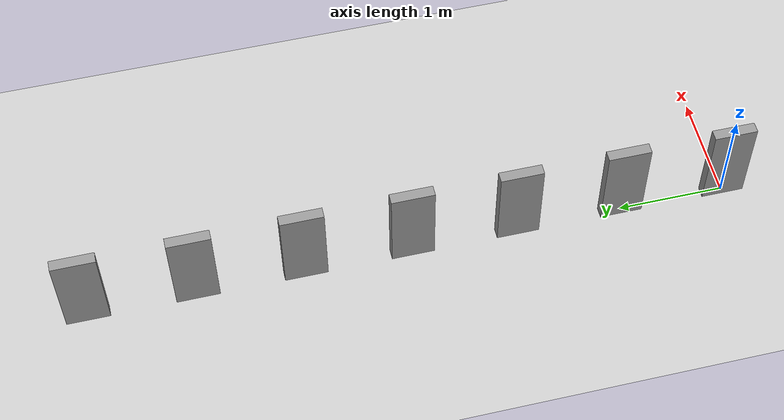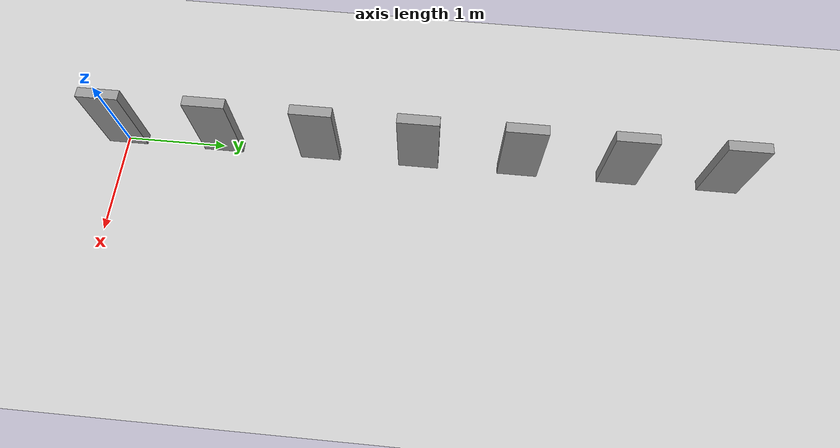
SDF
<?xml version="1.0" ?>
<!-- this file was generated using embedded ruby -->
<sdf version="1.5">
  <world name="inertia_rotations">

    <gravity>2 0 -9.8</gravity>
    <light type="directional" name="sun">
      <cast_shadows>true</cast_shadows>
      <pose>0 0 10 0 0 0</pose>
      <diffuse>1 1 1 1</diffuse>
      <specular>0.5 0.5 0.5 1</specular>
      <attenuation>
        <range>1000</range>
        <constant>0.9</constant>
        <linear>0.01</linear>
        <quadratic>0.001</quadratic>
      </attenuation>
      <direction>-0.5 0.1 -0.9</direction>
    </light>

    <model name="ground_plane">
      <static>true</static>
      <link name="link">
        <collision name="collision">
          <geometry>
            <plane>
              <normal>0 0 1</normal>
              <size>100 100</size>
            </plane>
          </geometry>
          <surface>
            <friction>
              <ode>
                <mu>50</mu>
              </ode>
            </friction>
          </surface>
        </collision>
        <visual name="visual">
          <geometry>
            <plane>
              <normal>0 0 1</normal>
              <size>100 100</size>
            </plane>
          </geometry>
          <material>
            <ambient>0.8 0.8 0.8 1</ambient>
            <diffuse>0.8 0.8 0.8 1</diffuse>
            <specular>0.8 0.8 0.8 1</specular>
          </material>
        </visual>
      </link>
    </model>

    <model name="box010409_ref">
      <pose>0 0 0.45  0 0 0</pose>
      <link name="link">
        <inertial>
          <pose>0 0 0  0 0 0</pose>
          <mass>12</mass>
          <inertia>
            <ixx>0.97</ixx>
            <iyy>0.82</iyy>
            <izz>0.17</izz>
            <ixy>0</ixy>
            <ixz>0</ixz>
            <iyz>0</iyz>
          </inertia>
        </inertial>
        <collision name="collision">
          <geometry>
            <box>
              <size>0.1 0.4 0.9</size>
            </box>
          </geometry>
          <surface>
            <friction>
              <ode>
                <mu>1</mu>
                <mu2>1</mu2>
              </ode>
            </friction>
            <contact>
              <ode>
                <max_vel>0.01</max_vel>
                <min_depth>0.001</min_depth>
              </ode>
            </contact>
          </surface>
        </collision>
        <visual name="visual">
          <geometry>
            <box>
              <size>0.1 0.4 0.9</size>
            </box>
          </geometry>
          <material>
            <script>
              <uri>file://media/materials/scripts/gazebo.material</uri>
              <name>Gazebo/Grey</name>
            </script>
          </material>
        </visual>
      </link>
    </model>

    <model name="box010409_x90">
      <pose>0 1 0.45  0 0 0</pose>
      <link name="link">
        <inertial>
          <pose>0 0 0  1.5707963267948966 0 0</pose>
          <mass>12</mass>
          <inertia>
            <ixx>0.97</ixx>
            <iyy>0.17</iyy>
            <izz>0.82</izz>
            <ixy>0</ixy>
            <ixz>0</ixz>
            <iyz>0</iyz>
          </inertia>
        </inertial>
        <collision name="collision">
          <geometry>
            <box>
              <size>0.1 0.4 0.9</size>
            </box>
          </geometry>
          <surface>
            <friction>
              <ode>
                <mu>1</mu>
                <mu2>1</mu2>
              </ode>
            </friction>
            <contact>
              <ode>
                <max_vel>0.01</max_vel>
                <min_depth>0.001</min_depth>
              </ode>
            </contact>
          </surface>
        </collision>
        <visual name="visual">
          <geometry>
            <box>
              <size>0.1 0.4 0.9</size>
            </box>
          </geometry>
          <material>
            <script>
              <uri>file://media/materials/scripts/gazebo.material</uri>
              <name>Gazebo/Grey</name>
            </script>
          </material>
        </visual>
      </link>
    </model>

    <model name="box010409_y90">
      <pose>0 2 0.45  0 0 0</pose>
      <link name="link">
        <inertial>
          <pose>0 0 0  0 1.5707963267948966 0</pose>
          <mass>12</mass>
          <inertia>
            <ixx>0.17</ixx>
            <iyy>0.82</iyy>
            <izz>0.97</izz>
            <ixy>0</ixy>
            <ixz>0</ixz>
            <iyz>0</iyz>
          </inertia>
        </inertial>
        <collision name="collision">
          <geometry>
            <box>
              <size>0.1 0.4 0.9</size>
            </box>
          </geometry>
          <surface>
            <friction>
              <ode>
                <mu>1</mu>
                <mu2>1</mu2>
              </ode>
            </friction>
            <contact>
              <ode>
                <max_vel>0.01</max_vel>
                <min_depth>0.001</min_depth>
              </ode>
            </contact>
          </surface>
        </collision>
        <visual name="visual">
          <geometry>
            <box>
              <size>0.1 0.4 0.9</size>
            </box>
          </geometry>
          <material>
            <script>
              <uri>file://media/materials/scripts/gazebo.material</uri>
              <name>Gazebo/Grey</name>
            </script>
          </material>
        </visual>
      </link>
    </model>

    <model name="box010409_z90">
      <pose>0 3 0.45  0 0 0</pose>
      <link name="link">
        <inertial>
          <pose>0 0 0  0 0 1.5707963267948966</pose>
          <mass>12</mass>
          <inertia>
            <ixx>0.82</ixx>
            <iyy>0.97</iyy>
            <izz>0.17</izz>
            <ixy>0</ixy>
            <ixz>0</ixz>
            <iyz>0</iyz>
          </inertia>
        </inertial>
        <collision name="collision">
          <geometry>
            <box>
              <size>0.1 0.4 0.9</size>
            </box>
          </geometry>
          <surface>
            <friction>
              <ode>
                <mu>1</mu>
                <mu2>1</mu2>
              </ode>
            </friction>
            <contact>
              <ode>
                <max_vel>0.01</max_vel>
                <min_depth>0.001</min_depth>
              </ode>
            </contact>
          </surface>
        </collision>
        <visual name="visual">
          <geometry>
            <box>
              <size>0.1 0.4 0.9</size>
            </box>
          </geometry>
          <material>
            <script>
              <uri>file://media/materials/scripts/gazebo.material</uri>
              <name>Gazebo/Grey</name>
            </script>
          </material>
        </visual>
      </link>
    </model>

    <model name="box010409_x45">
      <pose>0 4 0.45  0 0 0</pose>
      <link name="link">
        <inertial>
          <pose>0 0 0  -0.7853981633974483 0 0</pose>
          <mass>12</mass>
          <inertia>
            <ixx>0.97</ixx>
            <iyy>0.495</iyy>
            <izz>0.495</izz>
            <ixy>0</ixy>
            <ixz>0</ixz>
            <iyz>0.325</iyz>
          </inertia>
        </inertial>
        <collision name="collision">
          <geometry>
            <box>
              <size>0.1 0.4 0.9</size>
            </box>
          </geometry>
          <surface>
            <friction>
              <ode>
                <mu>1</mu>
                <mu2>1</mu2>
              </ode>
            </friction>
            <contact>
              <ode>
                <max_vel>0.01</max_vel>
                <min_depth>0.001</min_depth>
              </ode>
            </contact>
          </surface>
        </collision>
        <visual name="visual">
          <geometry>
            <box>
              <size>0.1 0.4 0.9</size>
            </box>
          </geometry>
          <material>
            <script>
              <uri>file://media/materials/scripts/gazebo.material</uri>
              <name>Gazebo/Grey</name>
            </script>
          </material>
        </visual>
      </link>
    </model>

    <model name="box010409_y45">
      <pose>0 5 0.45  0 0 0</pose>
      <link name="link">
        <inertial>
          <pose>0 0 0  0 -0.7853981633974483 0</pose>
          <mass>12</mass>
          <inertia>
            <ixx>0.57</ixx>
            <iyy>0.82</iyy>
            <izz>0.57</izz>
            <ixy>0</ixy>
            <ixz>-0.4</ixz>
            <iyz>0</iyz>
          </inertia>
        </inertial>
        <collision name="collision">
          <geometry>
            <box>
              <size>0.1 0.4 0.9</size>
            </box>
          </geometry>
          <surface>
            <friction>
              <ode>
                <mu>1</mu>
                <mu2>1</mu2>
              </ode>
            </friction>
            <contact>
              <ode>
                <max_vel>0.01</max_vel>
                <min_depth>0.001</min_depth>
              </ode>
            </contact>
          </surface>
        </collision>
        <visual name="visual">
          <geometry>
            <box>
              <size>0.1 0.4 0.9</size>
            </box>
          </geometry>
          <material>
            <script>
              <uri>file://media/materials/scripts/gazebo.material</uri>
              <name>Gazebo/Grey</name>
            </script>
          </material>
        </visual>
      </link>
    </model>

    <model name="box010409_z45">
      <pose>0 6 0.45  0 0 0</pose>
      <link name="link">
        <inertial>
          <pose>0 0 0  0 0 -0.7853981633974483</pose>
          <mass>12</mass>
          <inertia>
            <ixx>0.895</ixx>
            <iyy>0.895</iyy>
            <izz>0.17</izz>
            <ixy>0.075</ixy>
            <ixz>0</ixz>
            <iyz>0</iyz>
          </inertia>
        </inertial>
        <collision name="collision">
          <geometry>
            <box>
              <size>0.1 0.4 0.9</size>
            </box>
          </geometry>
          <surface>
            <friction>
              <ode>
                <mu>1</mu>
                <mu2>1</mu2>
              </ode>
            </friction>
            <contact>
              <ode>
                <max_vel>0.01</max_vel>
                <min_depth>0.001</min_depth>
              </ode>
            </contact>
          </surface>
        </collision>
        <visual name="visual">
          <geometry>
            <box>
              <size>0.1 0.4 0.9</size>
            </box>
          </geometry>
          <material>
            <script>
              <uri>file://media/materials/scripts/gazebo.material</uri>
              <name>Gazebo/Grey</name>
            </script>
          </material>
        </visual>
      </link>
    </model>

    <gui fullscreen='0'>
      <camera name='user_camera'>
        <pose>4.2 -0.7 2.0  0 0.3 2.57</pose>
        <view_controller>orbit</view_controller>
      </camera>
    </gui>
  </world>
</sdf>
